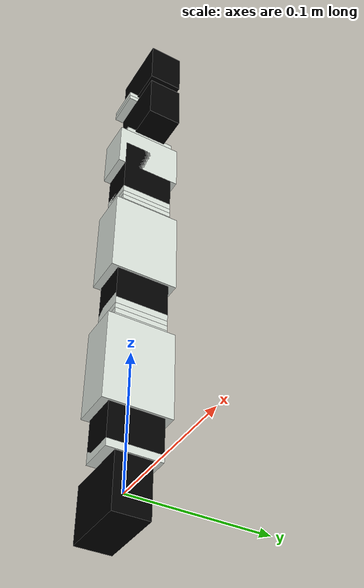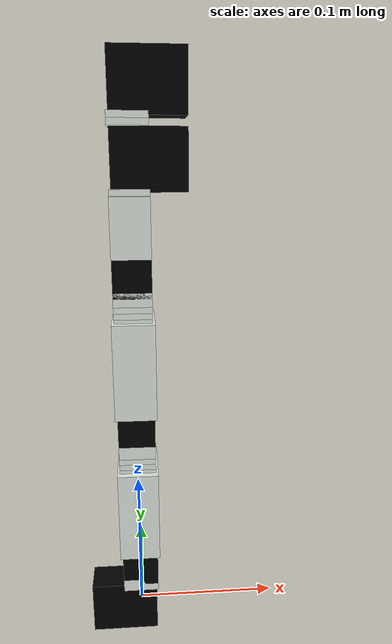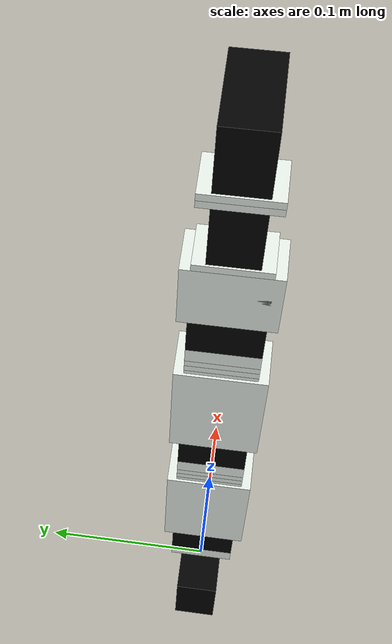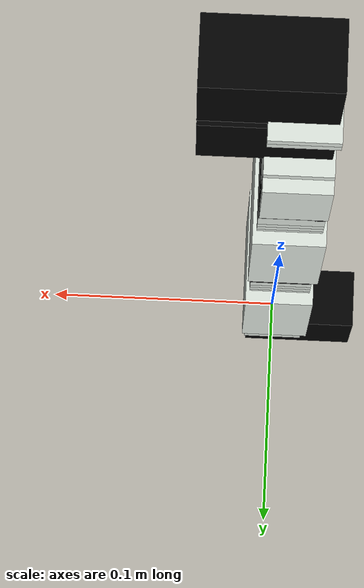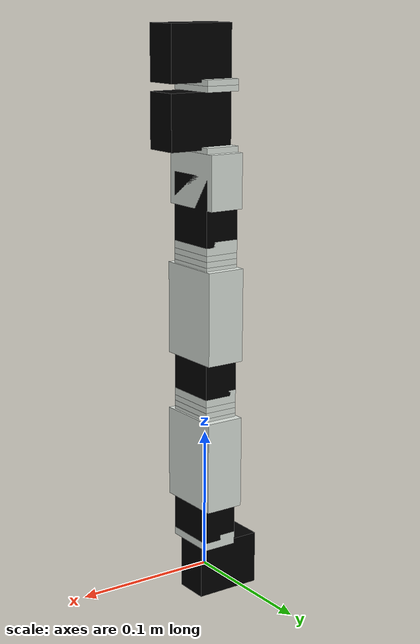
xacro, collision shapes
<?xml version="1.0"?>

<robot name="turtlebot_arm"
    xmlns:sensor="http://playerstage.sourceforge.net/gazebo/xmlschema/#sensor"
    xmlns:controller="http://playerstage.sourceforge.net/gazebo/xmlschema/#controller"
    xmlns:interface="http://playerstage.sourceforge.net/gazebo/xmlschema/#interface">

    <!-- Included URDF Files -->
    <include filename="$(find jr_description)/urdf/arm.xacro" />

    <!-- Instead, there is a base_link -->
    <link name="base_link"/>

    <turtlebot_arm parent="base_link" color="white" gripper_color="green">
      <origin xyz="0 0 0"/>
    </turtlebot_arm>

</robot>

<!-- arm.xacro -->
<robot>
  <include filename="$(find jr_description)/urdf/arm_hardware.xacro" />

  <material name="white">
    <color rgba="0.87 0.90 0.87 1.0"/>
  </material>
  <material name="black">
    <color rgba="0.0 0.0 0.0 1.0"/>
  </material>
  <material name="green">
    <color rgba="0.22 0.32 0.14 1.0"/>
  </material>

  <macro name="turtlebot_arm" params="parent color gripper_color *origin">
    <link name="arm_base_link" />
    <joint name="arm_base_joint" type="fixed">
      <insert_block name="origin" />
      <parent link="${parent}"/>
      <child link="arm_base_link" />
    </joint>

    <!-- fake gripper_link joint gives us a free servo!
         this makes us 5DOF and saves you $44.90
         that's a lot of coin! -->
    <link name="gripper_link" />
    <joint name="gripper_link_joint" type="revolute">
      <origin xyz="0 0 .112" rpy="0 -1.57 0" />
      <parent link="arm_wrist_flex_link"/>
      <child link="gripper_link" />
      <limit effort="30" velocity="1" lower="-3.14" upper="3.14"/>
      <axis xyz="1 0 0"/>
    </joint>

    <!-- shoulder pan joint -->
    <dynamixel_AX12_fixed parent="arm_base_link" name="arm_shoulder_pan_servo">
      <origin xyz="0 0 0" rpy="${M_PI/2} 0 ${M_PI/2}"/>
    </dynamixel_AX12_fixed>
    <bioloid_F3_revolute parent="arm_shoulder_pan_servo_link" name="arm_shoulder_pan" color="${color}" vlimit="1.571" llimit="-2.617" ulimit="2.617">
      <origin xyz="0 ${AX12_WIDTH/2} 0" rpy="${-M_PI/2} ${M_PI/2} ${M_PI}" />
    </bioloid_F3_revolute>

    <!-- shoulder lift joint -->
    <dynamixel_AX12_fixed parent="arm_shoulder_pan_link" name="arm_shoulder_lift_servo">
      <origin xyz="0 0 ${-AX12_HEIGHT-F10_HEIGHT+0.001}" rpy="0 ${M_PI} 0" />
    </dynamixel_AX12_fixed>
    <bioloid_F4_revolute parent="arm_shoulder_lift_servo_link" name="arm_shoulder_lift" color="${color}" vlimit="1.571" llimit="-2.617" ulimit="2.617">
      <origin xyz="0 0 0" rpy="0 0 0" />
    </bioloid_F4_revolute>
    <bioloid_F10_fixed parent="arm_shoulder_lift_link" name="arm_shoulder_F10_0" color="${color}">
      <origin xyz="0 0 ${F4_HEIGHT+F10_HEIGHT/2}" rpy="0 0 0" />
    </bioloid_F10_fixed>
    <bioloid_F10_fixed parent="arm_shoulder_F10_0_link" name="arm_shoulder_F10_1" color="${color}">
      <origin xyz="0 0 ${F10_HEIGHT}" rpy="0 0 0" />
    </bioloid_F10_fixed>
    <bioloid_F10_fixed parent="arm_shoulder_F10_1_link" name="arm_shoulder_F10_2" color="${color}">
      <origin xyz="0 0 ${F10_HEIGHT}" rpy="0 0 0" />
    </bioloid_F10_fixed>
    <bioloid_F3_fixed parent="arm_shoulder_F10_2_link" name="arm_shoulder_F3_0" color="${color}">
      <origin xyz="0 0 ${F10_HEIGHT/2}" rpy="0 ${M_PI} 0" />
    </bioloid_F3_fixed>

    <!-- elbow joint -->
    <dynamixel_AX12_fixed parent="arm_shoulder_F3_0_link" name="arm_elbow_flex_servo">
      <origin xyz="0 0 ${-AX12_HEIGHT-F10_HEIGHT+0.001}" rpy="0 ${M_PI} 0"/>
    </dynamixel_AX12_fixed>
    <bioloid_F4_revolute parent="arm_elbow_flex_servo_link" name="arm_elbow_flex" color="${color}" vlimit="1.571" llimit="-2.617" ulimit="2.617">
      <origin xyz="0 0 0" rpy="0 0 0" />
    </bioloid_F4_revolute>
    <bioloid_F10_fixed parent="arm_elbow_flex_link" name="arm_elbow_F10_0" color="${color}">
      <origin xyz="0 0 ${F4_HEIGHT+F10_HEIGHT/2}" rpy="0 0 0" />
    </bioloid_F10_fixed>
    <bioloid_F10_fixed parent="arm_elbow_F10_0_link" name="arm_elbow_F10_1" color="${color}">
      <origin xyz="0 0 ${F10_HEIGHT}" rpy="0 0 0" />
    </bioloid_F10_fixed>
    <bioloid_F10_fixed parent="arm_elbow_F10_1_link" name="arm_elbow_F10_2" color="${color}">
      <origin xyz="0 0 ${F10_HEIGHT}" rpy="0 0 0" />
    </bioloid_F10_fixed>
    <bioloid_F3_fixed parent="arm_elbow_F10_2_link" name="arm_elbow_F3_0" color="${color}">
      <origin xyz="0 0 ${F10_HEIGHT/2}" rpy="0 ${M_PI} 0" />
    </bioloid_F3_fixed>

    <!-- wrist flex joint -->
    <dynamixel_AX12_fixed parent="arm_elbow_F3_0_link" name="arm_wrist_flex_servo">
      <origin xyz="0 0 ${-AX12_HEIGHT-F10_HEIGHT+0.001}" rpy="0 ${M_PI} 0"/>
    </dynamixel_AX12_fixed>
    <bioloid_F2_revolute parent="arm_wrist_flex_servo_link" name="arm_wrist_flex" color="${color}" vlimit="1.571" llimit="-1.745" ulimit="1.745">
      <origin xyz="0 0 0" rpy="0 0 0" />
    </bioloid_F2_revolute>
    <bioloid_F10_fixed parent="arm_wrist_flex_link" name="arm_wrist_flex_F10_0" color="${color}">
      <origin xyz="0 0 ${F2_HEIGHT+F10_HEIGHT/2}" rpy="0 0 0" />
    </bioloid_F10_fixed>

    <!-- wrist roll joint -->
    <dynamixel_AX12_fixed parent="arm_wrist_flex_F10_0_link" name="arm_wrist_roll_servo">
      <origin xyz="0 0 ${AX12_WIDTH/2}" rpy="${M_PI/2} 0 -${M_PI/2}"/>
    </dynamixel_AX12_fixed>
    <bioloid_F10_revolute parent="arm_wrist_roll_servo_link" name="arm_wrist_roll" color="${color}" vlimit="1.571" llimit="-2.617" ulimit="2.617">
      <origin xyz="0 ${AX12_WIDTH/2+F10_HEIGHT/2} 0" rpy="0 -${M_PI/2} ${M_PI/2}" />
    </bioloid_F10_revolute>
    <bioloid_F10_fixed parent="arm_wrist_roll_link" name="arm_wrist_roll_F10_0" color="${color}">
      <origin xyz="0 0 -${F10_HEIGHT}" rpy="0 0 0" />
    </bioloid_F10_fixed>

    <!-- gripper joint -->
    <dynamixel_AX12_fixed parent="arm_wrist_roll_F10_0_link" name="gripper_servo">
      <origin xyz="0 0 -${AX12_WIDTH/2}" rpy="${M_PI/2} ${M_PI} ${M_PI/2}"/>
    </dynamixel_AX12_fixed>

    <!-- finger 1 -->

    <!-- finger 2 -->

  </macro>

</robot>

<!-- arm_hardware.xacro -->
<robot>
  <property name="M_PI" value="3.14159"/>
  <property name="M_SCALE" value="0.001"/>
  <property name="F10_HEIGHT" value="0.004"/>
  <property name="F4_HEIGHT" value="0.0525"/>
  <property name="F3_HEIGHT" value="0.009"/>
  <property name="AX12_HEIGHT" value="0.0385"/>
  <property name="AX12_WIDTH" value="0.038"/>
  <property name="F2_HEIGHT" value="0.0265"/>

  <macro name="bioloid_F10_fixed" params="parent name color *origin">
    <joint name="${name}_joint" type="fixed">
      <insert_block name="origin" />
      <parent link="${parent}"/>
      <child link="${name}_link" />
    </joint>

    <link name="${name}_link">
      <inertial>
        <mass value="0.00001" />
        <origin xyz="0 0 0" />
        <inertia ixx="1.0" ixy="0.0" ixz="0.0"
          iyy="1.0" iyz="0.0"
          izz="1.0" />
      </inertial>

      <visual>
        <origin xyz=" 0 0 0 " rpy="0 0 0" />
        <geometry>
          <mesh filename="package://turtlebot_arm_description/meshes/F10.stl" scale="${M_SCALE} ${M_SCALE} ${M_SCALE}"/>
        </geometry>
        <material name="${color}"/>
      </visual>

      <collision>
        <origin xyz="0.0 0.0 0.0" rpy="0 0 0" />
        <geometry>
          <box size="0.025 0.038 0.004"/>
        </geometry>
      </collision>
    </link>
  </macro>

  <macro name="finger_fixed" params="parent name color *origin">
    <joint name="${name}_joint" type="fixed">
      <insert_block name="origin" />
      <parent link="${parent}"/>
      <child link="${name}_link" />
    </joint>

    <link name="${name}_link">
      <inertial>
        <mass value="0.00001" />
        <origin xyz="0 0 0" />
        <inertia ixx="1.0" ixy="0.0" ixz="0.0"
          iyy="1.0" iyz="0.0"
          izz="1.0" />
      </inertial>

      <visual>
        <origin xyz=" 0 0 0 " rpy="0 0 0" />
        <geometry>
          <mesh filename="package://turtlebot_arm_description/meshes/finger.stl" scale="${M_SCALE} ${M_SCALE} ${M_SCALE}"/>
        </geometry>
        <material name="${color}"/>
      </visual>

      <collision>
        <origin xyz="0.02645 0.0 -0.00655" rpy="0 0 0" />
        <geometry>
          <box size="0.0783 0.03801 0.0193"/>
        </geometry>
      </collision>
    </link>
  </macro>

  <macro name="bioloid_F3_fixed" params="parent name color *origin">
    <joint name="${name}_joint" type="fixed">
      <insert_block name="origin" />
      <parent link="${parent}"/>
      <child link="${name}_link" />
    </joint>

    <link name="${name}_link">
      <inertial>
        <mass value="0.00001" />
        <origin xyz="0 0 0" />
        <inertia ixx="1.0" ixy="0.0" ixz="0.0"
          iyy="1.0" iyz="0.0"
          izz="1.0" />
      </inertial>

      <visual>
        <origin xyz=" 0 0 0 " rpy="0 0 0" />
        <geometry>
          <mesh filename="package://turtlebot_arm_description/meshes/F3.stl" scale="${M_SCALE} ${M_SCALE} ${M_SCALE}"/>
        </geometry>
        <material name="${color}"/>
      </visual>

      <collision>
        <origin xyz="0.0 0.0 -0.0045" rpy="0 0 0" />
        <geometry>
          <box size="0.025 0.038 0.009"/>
        </geometry>
      </collision>
    </link>
  </macro>

  <macro name="dynamixel_AX12_fixed" params="parent name *origin">
    <joint name="${name}_joint" type="fixed">
      <insert_block name="origin" />
      <parent link="${parent}"/>
      <child link="${name}_link" />
    </joint>

    <link name="${name}_link">
      <inertial>
        <mass value="0.00001" />
        <origin xyz="0 0 0" />
        <inertia ixx="1.0" ixy="0.0" ixz="0.0"
          iyy="1.0" iyz="0.0"
          izz="1.0" />
      </inertial>

      <visual>
        <origin xyz=" 0 0 0 " rpy="0 0 0" />
        <geometry>
          <mesh filename="package://turtlebot_arm_description/meshes/ax12_box.stl" scale="${M_SCALE} ${M_SCALE} ${M_SCALE}"/>
        </geometry>
        <material name="black"/>
      </visual>

      <collision>
        <origin xyz="0.0 0.0 -0.01241" rpy="0 0 0" />
        <geometry>
          <box size="0.025 0.038 0.04762"/>
        </geometry>
      </collision>
    </link>
  </macro>

  <macro name="bioloid_F3_revolute" params="parent name color llimit ulimit vlimit *origin">
    <joint name="${name}_joint" type="revolute">
      <insert_block name="origin" />
      <axis xyz="0 0 -1"/>
      <limit effort="30" velocity="${vlimit}" lower="${llimit}" upper="${ulimit}" />
      <parent link="${parent}"/>
      <child link="${name}_link" />
    </joint>

    <link name="${name}_link">
      <inertial>
        <mass value="0.00001" />
        <origin xyz="0 0 0" />
        <inertia ixx="1.0" ixy="0.0" ixz="0.0"
          iyy="1.0" iyz="0.0"
          izz="1.0" />
      </inertial>

      <visual>
        <origin xyz=" 0 0 0 " rpy="0 0 0" />
        <geometry>
          <mesh filename="package://turtlebot_arm_description/meshes/F3.stl" scale="${M_SCALE} ${M_SCALE} ${M_SCALE}"/>
        </geometry>
        <material name="${color}"/>
      </visual>

      <collision>
        <origin xyz="0.0 0.0 -0.0045" rpy="0 0 0" />
        <geometry>
          <box size="0.025 0.038 0.009"/>
        </geometry>
      </collision>
    </link>
  </macro>

  <macro name="bioloid_F2_revolute" params="parent name color llimit ulimit vlimit *origin">
    <joint name="${name}_joint" type="revolute">
      <insert_block name="origin" />
      <axis xyz="0 1 0"/>
      <limit effort="30" velocity="${vlimit}" lower="${llimit}" upper="${ulimit}" />
      <parent link="${parent}"/>
      <child link="${name}_link" />
    </joint>

    <link name="${name}_link">
      <inertial>
        <mass value="0.00001" />
        <origin xyz="0 0 0" />
        <inertia ixx="1.0" ixy="0.0" ixz="0.0"
          iyy="1.0" iyz="0.0"
          izz="1.0" />
      </inertial>

      <visual>
        <origin xyz=" 0 0 0 " rpy="0 0 0" />
        <geometry>
          <mesh filename="package://turtlebot_arm_description/meshes/F2.stl" scale="${M_SCALE} ${M_SCALE} ${M_SCALE}"/>
        </geometry>
        <material name="${color}"/>
      </visual>

      <collision>
        <origin xyz="0.0 0.0 0.00775" rpy="0 0 0" />
        <geometry>
          <box size="0.025 0.0485 0.0375"/>
        </geometry>
      </collision>
    </link>
  </macro>

  <macro name="bioloid_F4_revolute" params="parent name color llimit ulimit vlimit *origin">
    <joint name="${name}_joint" type="revolute">
      <insert_block name="origin" />
      <axis xyz="0 1 0"/>
      <limit effort="30" velocity="${vlimit}" lower="${llimit}" upper="${ulimit}" />
      <parent link="${parent}"/>
      <child link="${name}_link" />
    </joint>

    <link name="${name}_link">
      <inertial>
        <mass value="0.00001" />
        <origin xyz="0 0 0" />
        <inertia ixx="1.0" ixy="0.0" ixz="0.0"
          iyy="1.0" iyz="0.0"
          izz="1.0" />
      </inertial>

      <visual>
        <origin xyz=" 0 0 0 " rpy="0 0 0" />
        <geometry>
          <mesh filename="package://turtlebot_arm_description/meshes/F4.stl" scale="${M_SCALE} ${M_SCALE} ${M_SCALE}"/>
        </geometry>
        <material name="${color}"/>
      </visual>

      <collision>
        <origin xyz="0.0 0.0 0.0215" rpy="0 0 0" />
        <geometry>
          <box size="0.028 0.0485 0.065"/>
        </geometry>
      </collision>
    </link>
  </macro>

  <macro name="bioloid_F10_revolute" params="parent name color llimit ulimit vlimit *origin">
    <joint name="${name}_joint" type="revolute">
      <insert_block name="origin" />
      <axis xyz="0 0 -1"/>
      <limit effort="30" velocity="${vlimit}" lower="${llimit}" upper="${ulimit}" />
      <parent link="${parent}"/>
      <child link="${name}_link" />
    </joint>

    <link name="${name}_link">
      <inertial>
        <mass value="0.00001" />
        <origin xyz="0 0 0" />
        <inertia ixx="1.0" ixy="0.0" ixz="0.0"
          iyy="1.0" iyz="0.0"
          izz="1.0" />
      </inertial>

      <visual>
        <origin xyz=" 0 0 0 " rpy="0 0 0" />
        <geometry>
          <mesh filename="package://turtlebot_arm_description/meshes/F10.stl" scale="${M_SCALE} ${M_SCALE} ${M_SCALE}"/>
        </geometry>
        <material name="${color}"/>
      </visual>

      <collision>
        <origin xyz="0.0 0.0 0.0" rpy="0 0 0" />
        <geometry>
          <box size="0.025 0.038 0.004"/>
        </geometry>
      </collision>
    </link>
  </macro>

</robot>
